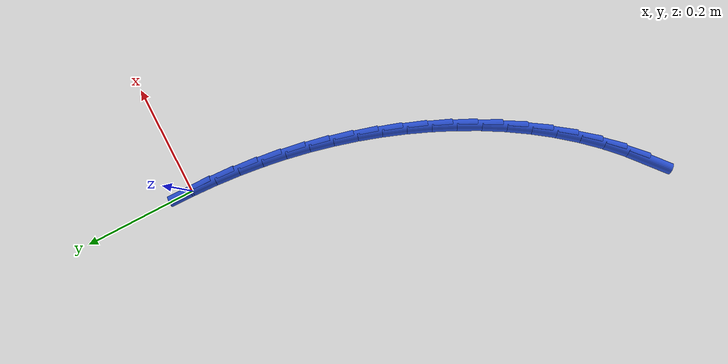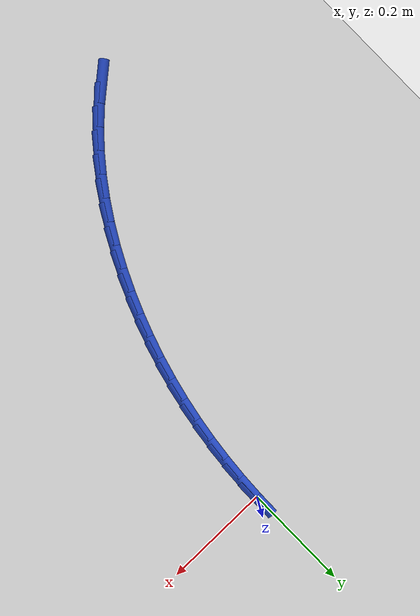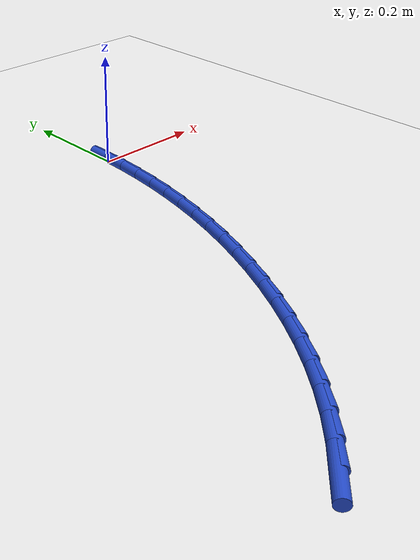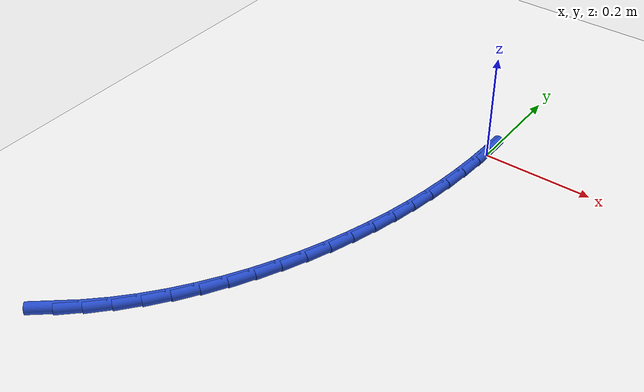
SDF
<sdf version="1.6">
 <world name="default">
  <model name="ground_plane">
   <static>1</static>
   <link name="link">
    <collision name="collision">
     <geometry><plane><normal>0 0 1</normal><size>100 100</size></plane></geometry>
     <surface><friction><ode><mu>100</mu><mu2>50</mu2></ode></friction></surface>
    </collision>
    <visual name="visual">
     <cast_shadows>0</cast_shadows>
     <geometry><plane><normal>0 0 1</normal><size>100 100</size></plane></geometry>
     <material>
      <script><uri>file://media/materials/scripts/gazebo.material</uri><name>Gazebo/WhiteGlow</name></script>
     </material>
    </visual>
   </link>
  </model>
  <model name="line">
   <link name="link_0">
    <pose>1.3877787807814457e-17 8.326672684688674e-17 0.01 0 1.57 1.5598768106057224</pose>
    <collision name="collision">
     <geometry><cylinder><radius>0.01</radius><length>0.08</length></cylinder></geometry>
    </collision>
    <visual name="visual">
     <material>
      <script><name>Gazebo/Blue</name><uri>file://media/materials/scripts/gazebo.material</uri></script>
     </material>
     <geometry><cylinder><radius>0.01</radius><length>0.08</length></cylinder></geometry>
    </visual>
   </link>
   <link name="link_141">
    <pose>-0.3194930604080147 -0.7291786716437669 0.01 0 1.57 0.699109082762534</pose>
    <collision name="collision">
     <geometry><cylinder><radius>0.01</radius><length>0.08</length></cylinder></geometry>
    </collision>
    <visual name="visual">
     <material>
      <script><name>Gazebo/Blue</name><uri>file://media/materials/scripts/gazebo.material</uri></script>
     </material>
     <geometry><cylinder><radius>0.01</radius><length>0.08</length></cylinder></geometry>
    </visual>
   </link>
   <link name="link_142">
    <pose>-0.2868338662407382 -0.701719913839073 0.01 0 1.57 0.7667830735326028</pose>
    <collision name="collision">
     <geometry><cylinder><radius>0.01</radius><length>0.08</length></cylinder></geometry>
    </collision>
    <visual name="visual">
     <material>
      <script><name>Gazebo/Blue</name><uri>file://media/materials/scripts/gazebo.material</uri></script>
     </material>
     <geometry><cylinder><radius>0.01</radius><length>0.08</length></cylinder></geometry>
    </visual>
   </link>
   <link name="link_143">
    <pose>-0.2560233652503352 -0.672035658270811 0.01 0 1.57 0.830953921364008</pose>
    <collision name="collision">
     <geometry><cylinder><radius>0.01</radius><length>0.08</length></cylinder></geometry>
    </collision>
    <visual name="visual">
     <material>
      <script><name>Gazebo/Blue</name><uri>file://media/materials/scripts/gazebo.material</uri></script>
     </material>
     <geometry><cylinder><radius>0.01</radius><length>0.08</length></cylinder></geometry>
    </visual>
   </link>
   <link name="link_144">
    <pose>-0.22706143654011163 -0.6403070101159479 0.01 0 1.57 0.890938700458015</pose>
    <collision name="collision">
     <geometry><cylinder><radius>0.01</radius><length>0.08</length></cylinder></geometry>
    </collision>
    <visual name="visual">
     <material>
      <script><name>Gazebo/Blue</name><uri>file://media/materials/scripts/gazebo.material</uri></script>
     </material>
     <geometry><cylinder><radius>0.01</radius><length>0.08</length></cylinder></geometry>
    </visual>
   </link>
   <link name="link_145">
    <pose>-0.1999306892736324 -0.6067470432675413 0.01 0 1.57 0.9469859023329896</pose>
    <collision name="collision">
     <geometry><cylinder><radius>0.01</radius><length>0.08</length></cylinder></geometry>
    </collision>
    <visual name="visual">
     <material>
      <script><name>Gazebo/Blue</name><uri>file://media/materials/scripts/gazebo.material</uri></script>
     </material>
     <geometry><cylinder><radius>0.01</radius><length>0.08</length></cylinder></geometry>
    </visual>
   </link>
   <link name="link_146">
    <pose>-0.17461373261446186 -0.5715688316186468 0.01 0 1.57 0.9994072433044199</pose>
    <collision name="collision">
     <geometry><cylinder><radius>0.01</radius><length>0.08</length></cylinder></geometry>
    </collision>
    <visual name="visual">
     <material>
      <script><name>Gazebo/Blue</name><uri>file://media/materials/scripts/gazebo.material</uri></script>
     </material>
     <geometry><cylinder><radius>0.01</radius><length>0.08</length></cylinder></geometry>
    </visual>
   </link>
   <link name="link_147">
    <pose>-0.15109317572616593 -0.5349854490623231 0.01 0 1.57 1.048551377030433</pose>
    <collision name="collision">
     <geometry><cylinder><radius>0.01</radius><length>0.08</length></cylinder></geometry>
    </collision>
    <visual name="visual">
     <material>
      <script><name>Gazebo/Blue</name><uri>file://media/materials/scripts/gazebo.material</uri></script>
     </material>
     <geometry><cylinder><radius>0.01</radius><length>0.08</length></cylinder></geometry>
    </visual>
   </link>
   <link name="link_148">
    <pose>-0.12935162777230905 -0.4972099694916265 0.01 0 1.57 1.094785308535392</pose>
    <collision name="collision">
     <geometry><cylinder><radius>0.01</radius><length>0.08</length></cylinder></geometry>
    </collision>
    <visual name="visual">
     <material>
      <script><name>Gazebo/Blue</name><uri>file://media/materials/scripts/gazebo.material</uri></script>
     </material>
     <geometry><cylinder><radius>0.01</radius><length>0.08</length></cylinder></geometry>
    </visual>
   </link>
   <link name="link_149">
    <pose>-0.10937169791645614 -0.45845546679961435 0.01 0 1.57 1.138482549406667</pose>
    <collision name="collision">
     <geometry><cylinder><radius>0.01</radius><length>0.08</length></cylinder></geometry>
    </collision>
    <visual name="visual">
     <material>
      <script><name>Gazebo/Blue</name><uri>file://media/materials/scripts/gazebo.material</uri></script>
     </material>
     <geometry><cylinder><radius>0.01</radius><length>0.08</length></cylinder></geometry>
    </visual>
   </link>
   <link name="link_150">
    <pose>-0.09113599532217206 -0.41893501487934337 0.01 0 1.57 1.1800170654970759</pose>
    <collision name="collision">
     <geometry><cylinder><radius>0.01</radius><length>0.08</length></cylinder></geometry>
    </collision>
    <visual name="visual">
     <material>
      <script><name>Gazebo/Blue</name><uri>file://media/materials/scripts/gazebo.material</uri></script>
     </material>
     <geometry><cylinder><radius>0.01</radius><length>0.08</length></cylinder></geometry>
    </visual>
   </link>
   <link name="link_151">
    <pose>-0.07462712814638237 -0.37886165524768045 0.01 0 1.57 1.220122750898254</pose>
    <collision name="collision">
     <geometry><cylinder><radius>0.01</radius><length>0.08</length></cylinder></geometry>
    </collision>
    <visual name="visual">
     <material>
      <script><name>Gazebo/Blue</name><uri>file://media/materials/scripts/gazebo.material</uri></script>
     </material>
     <geometry><cylinder><radius>0.01</radius><length>0.08</length></cylinder></geometry>
    </visual>
   </link>
   <link name="link_152">
    <pose>-0.05982616355704778 -0.33839886711793615 0.01 0 1.57 1.2600183585020726</pose>
    <collision name="collision">
     <geometry><cylinder><radius>0.01</radius><length>0.08</length></cylinder></geometry>
    </collision>
    <visual name="visual">
     <material>
      <script><name>Gazebo/Blue</name><uri>file://media/materials/scripts/gazebo.material</uri></script>
     </material>
     <geometry><cylinder><radius>0.01</radius><length>0.08</length></cylinder></geometry>
    </visual>
   </link>
   <link name="link_153">
    <pose>-0.04670952124761224 -0.29756065456255165 0.01 0 1.57 1.2997451277622765</pose>
    <collision name="collision">
     <geometry><cylinder><radius>0.01</radius><length>0.08</length></cylinder></geometry>
    </collision>
    <visual name="visual">
     <material>
      <script><name>Gazebo/Blue</name><uri>file://media/materials/scripts/gazebo.material</uri></script>
     </material>
     <geometry><cylinder><radius>0.01</radius><length>0.08</length></cylinder></geometry>
    </visual>
   </link>
   <link name="link_154">
    <pose>-0.035252748254757466 -0.2563329546915636 0.01 0 1.57 1.3391192436197885</pose>
    <collision name="collision">
     <geometry><cylinder><radius>0.01</radius><length>0.08</length></cylinder></geometry>
    </collision>
    <visual name="visual">
     <material>
      <script><name>Gazebo/Blue</name><uri>file://media/materials/scripts/gazebo.material</uri></script>
     </material>
     <geometry><cylinder><radius>0.01</radius><length>0.08</length></cylinder></geometry>
    </visual>
   </link>
   <link name="link_155">
    <pose>-0.025431391615165135 -0.21470170461500826 0.01 0 1.57 1.3779641384922956</pose>
    <collision name="collision">
     <geometry><cylinder><radius>0.01</radius><length>0.08</length></cylinder></geometry>
    </collision>
    <visual name="visual">
     <material>
      <script><name>Gazebo/Blue</name><uri>file://media/materials/scripts/gazebo.material</uri></script>
     </material>
     <geometry><cylinder><radius>0.01</radius><length>0.08</length></cylinder></geometry>
    </visual>
   </link>
   <link name="link_156">
    <pose>-0.017220998365516844 -0.17265284144292156 0.01 0 1.57 1.4161144476975895</pose>
    <collision name="collision">
     <geometry><cylinder><radius>0.01</radius><length>0.08</length></cylinder></geometry>
    </collision>
    <visual name="visual">
     <material>
      <script><name>Gazebo/Blue</name><uri>file://media/materials/scripts/gazebo.material</uri></script>
     </material>
     <geometry><cylinder><radius>0.01</radius><length>0.08</length></cylinder></geometry>
    </visual>
   </link>
   <link name="link_157">
    <pose>-0.010597115542494573 -0.13017230228534132 0.01 0 1.57 1.4534193257193146</pose>
    <collision name="collision">
     <geometry><cylinder><radius>0.01</radius><length>0.08</length></cylinder></geometry>
    </collision>
    <visual name="visual">
     <material>
      <script><name>Gazebo/Blue</name><uri>file://media/materials/scripts/gazebo.material</uri></script>
     </material>
     <geometry><cylinder><radius>0.01</radius><length>0.08</length></cylinder></geometry>
    </visual>
   </link>
   <link name="link_158">
    <pose>-0.005535290182779876 -0.08724602425230335 0.01 0 1.57 1.4897449792617665</pose>
    <collision name="collision">
     <geometry><cylinder><radius>0.01</radius><length>0.08</length></cylinder></geometry>
    </collision>
    <visual name="visual">
     <material>
      <script><name>Gazebo/Blue</name><uri>file://media/materials/scripts/gazebo.material</uri></script>
     </material>
     <geometry><cylinder><radius>0.01</radius><length>0.08</length></cylinder></geometry>
    </visual>
   </link>
   <link name="link_159">
    <pose>-0.0020110693230544507 -0.0438599444538441 0.01 0 1.57 1.5249763478254668</pose>
    <collision name="collision">
     <geometry><cylinder><radius>0.01</radius><length>0.08</length></cylinder></geometry>
    </collision>
    <visual name="visual">
     <material>
      <script><name>Gazebo/Blue</name><uri>file://media/materials/scripts/gazebo.material</uri></script>
     </material>
     <geometry><cylinder><radius>0.01</radius><length>0.08</length></cylinder></geometry>
    </visual>
   </link>
   <link name="link_160">
    <pose>0.0 0.0 0.01 0 1.57 1.5590179354160387</pose>
    <collision name="collision">
     <geometry><cylinder><radius>0.01</radius><length>0.08</length></cylinder></geometry>
    </collision>
    <visual name="visual">
     <material>
      <script><name>Gazebo/Blue</name><uri>file://media/materials/scripts/gazebo.material</uri></script>
     </material>
     <geometry><cylinder><radius>0.01</radius><length>0.08</length></cylinder></geometry>
    </visual>
   </link>
  </model>
 </world>
</sdf>
